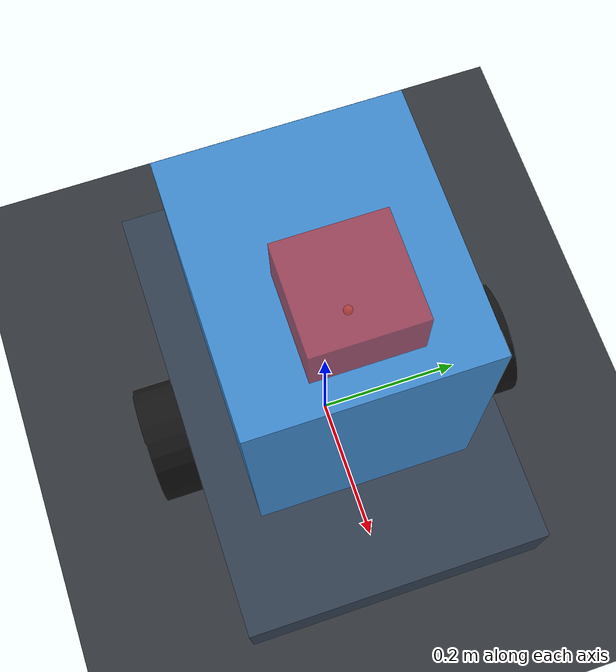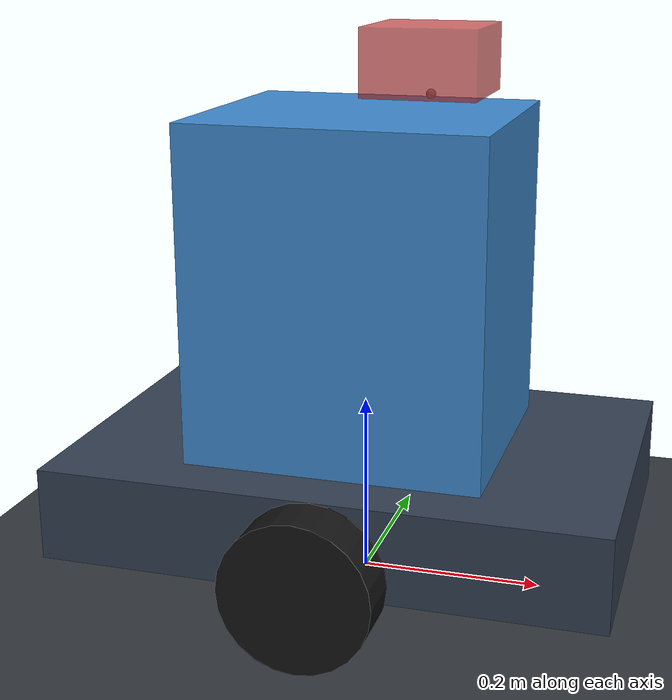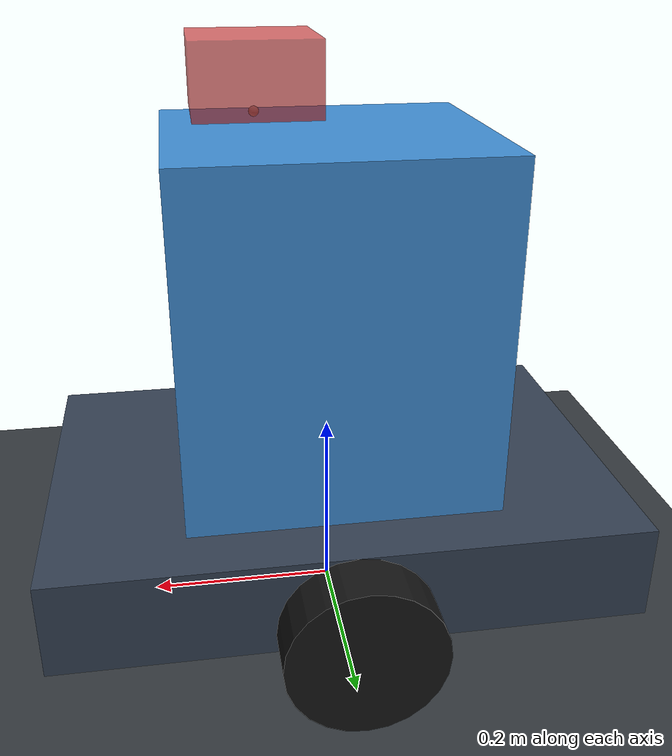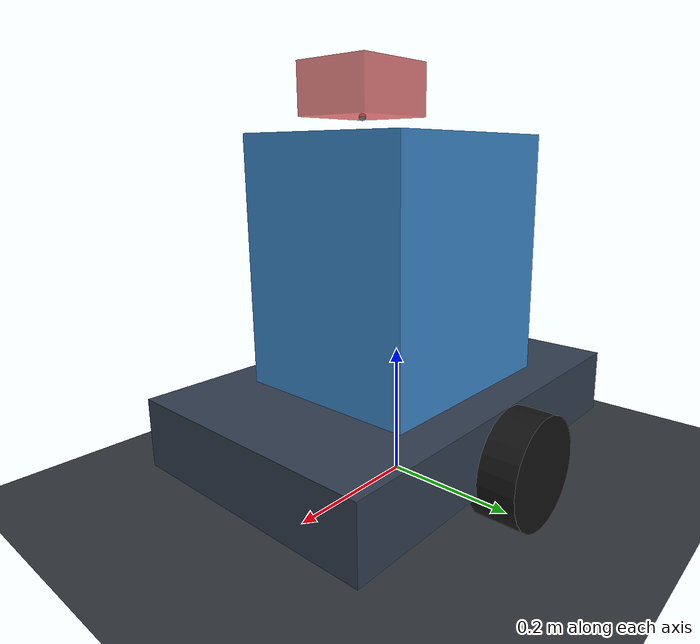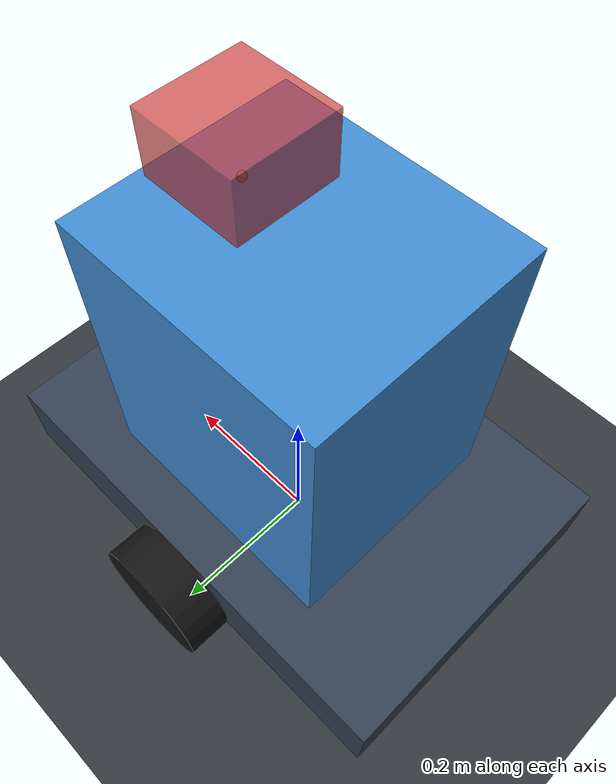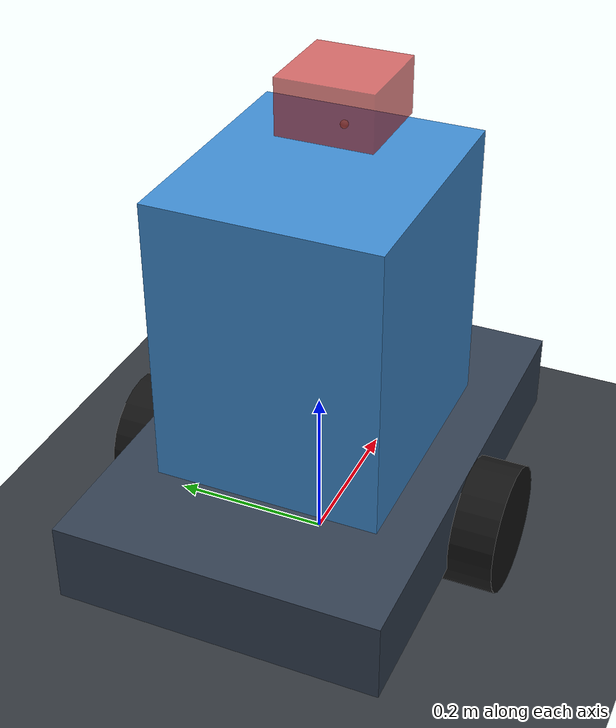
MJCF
<mujoco model="ModuBalance slow wheeled prototype">
  <compiler angle="degree" autolimits="true"/>
  <option timestep="0.002" gravity="0 0 -9.81" integrator="RK4"/>
  <default><geom friction="0.8 0.01 0.001"/><joint damping="0.4" armature="0.02"/></default>
  <worldbody>
    <light pos="0 -2 3" dir="0 0 -1" directional="true"/>
    <geom name="ground" type="plane" size="5 5 0.1" rgba="0.2 0.22 0.24 1"/>
    <body name="wheel_base" pos="0 0 0.11">
      <joint name="wheel_base_slide" type="slide" axis="1 0 0" range="-2 2" damping="15"/>
      <geom type="box" size="0.30 0.20 0.05" mass="8" rgba="0.20 0.25 0.32 1"/>
      <geom type="cylinder" pos="0 0.22 -0.03" euler="90 0 0" size="0.08 0.035" mass="0.5" rgba="0.08 0.08 0.08 1"/>
      <geom type="cylinder" pos="0 -0.22 -0.03" euler="90 0 0" size="0.08 0.035" mass="0.5" rgba="0.08 0.08 0.08 1"/>
      <body name="wheeled_body" pos="0 0 0.05">
        <joint name="wheeled_pitch" type="hinge" axis="0 1 0" range="-25 25"/>
        <geom name="wheeled_body_geom" type="box" pos="0 0 0.18" size="0.16 0.14 0.18" mass="4" rgba="0.25 0.55 0.82 1"/>
        <site name="wheeled_imu" pos="0 0 0.18"/>
        <site name="wheeled_payload_site" pos="0.07 0 0.38"/>
        <geom name="wheeled_payload" type="box" pos="0.07 0 0.415" size="0.06 0.06 0.035" mass="0" contype="0" conaffinity="0" rgba="0.8 0.2 0.2 0.7"/>
      </body>
    </body>
  </worldbody>
  <actuator>
    <motor name="wheeled_pitch_motor" joint="wheeled_pitch" ctrllimited="true" ctrlrange="-20 20"/>
    <position name="wheel_base_servo" joint="wheel_base_slide" kp="700" kv="120" ctrllimited="true" ctrlrange="-2 2"/>
  </actuator>
  <sensor>
    <framequat name="wheeled_orientation" objtype="site" objname="wheeled_imu"/>
    <gyro name="wheeled_gyro" site="wheeled_imu"/>
    <jointpos name="wheeled_base_position" joint="wheel_base_slide"/>
    <jointvel name="wheeled_base_velocity" joint="wheel_base_slide"/>
    <actuatorfrc name="wheeled_torque" actuator="wheeled_pitch_motor"/>
  </sensor>
</mujoco>
